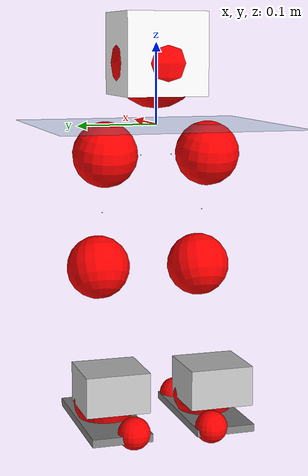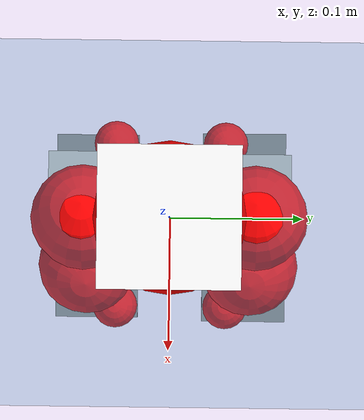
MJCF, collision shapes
<mujoco model="pi_12dof_release_v1">
  <compiler angle="radian" assetdir="assets" balanceinertia="true" inertiafromgeom="false"/>

  <option timestep="0.005" density="1.2" viscosity="2e-05"/>

  <size nkey="1"/>

  <visual>
    <quality shadowsize="8192"/>
    <map shadowclip="0.5"/>
  </visual>

  <default>
    <default class="/">
      <joint armature="0.01" damping="0.01" frictionloss="0.01"/>
      <geom contype="0" conaffinity="0" group="1" solref="-1000 -80"/>
      <site size="0.01 0.005 0.005" group="5"/>
      <general forcelimited="true" biastype="affine" gainprm="20" biasprm="0 -20 -0.5"/>
      <default class="foot">
        <geom size="0.0845 0.036 0.005" type="box" condim="6" group="4" priority="1" friction="0.9 0.2 0.2" solimp="0.015 1 0.005"/>
      </default>
      <default class="reward_collision_sphere">
        <geom group="5" rgba="1 0 0 1"/>
      </default>
    </default>
  </default>

  <asset>
    <texture type="skybox" colorspace="auto" name="//unnamed_texture_0" builtin="gradient" rgb1="0.95 0.95 0.95" rgb2="0.95 0.95 0.95" width="100" height="600"/>
    <texture type="2d" colorspace="auto" name="texplane" builtin="checker" rgb1="0.345 0.575 0.748" rgb2="0.345 0.575 0.748" markrgb="1 1 1" width="512" height="512"/>
    <material name="MatPlane" class="/" texture="texplane" texuniform="true" texrepeat="2 2" specular="0.9"/>
    <mesh name="baselink_1" class="/" file="baselink_1.STL"/>
    <mesh name="r_hip_pitch_link" class="/" file="r_hip_pitch_link.STL"/>
    <mesh name="r_hip_roll_link" class="/" file="r_hip_roll_link.STL"/>
    <mesh name="r_thigh_link" class="/" file="r_thigh_link.STL"/>
    <mesh name="r_calf_link" class="/" file="r_calf_link.STL"/>
    <mesh name="r_ankle_pitch_link" class="/" file="r_ankle_pitch_link.STL"/>
    <mesh name="r_ankle_roll_link" class="/" file="r_ankle_roll_link.STL"/>
    <mesh name="l_hip_pitch_link" class="/" file="l_hip_pitch_link.STL"/>
    <mesh name="l_hip_roll_link" class="/" file="l_hip_roll_link.STL"/>
    <mesh name="l_thigh_link" class="/" file="l_thigh_link.STL"/>
    <mesh name="l_calf_link" class="/" file="l_calf_link.STL"/>
    <mesh name="l_ankle_pitch_link" class="/" file="l_ankle_pitch_link.STL"/>
    <mesh name="l_ankle_roll_link" class="/" file="l_ankle_roll_link.STL"/>
  </asset>

  <worldbody>
    <geom name="floor" class="/" size="100 100 0.125" type="plane" group="0" material="MatPlane"/>
    <light name="toplight_shadow" class="/" pos="0 0 5" dir="0.0990148 0.0990148 -0.990148" type="directional" ambient="0.04 0.04 0.04" diffuse="0.55 0.55 0.55" specular="0.12 0.12 0.12"/>
    <light name="toplight_fill" class="/" pos="0 0 5" dir="0.0990148 0.0990148 -0.990148" type="directional" castshadow="false" ambient="0.04 0.04 0.04" diffuse="0.3 0.3 0.3" specular="0.08 0.08 0.08"/>
    <body name="trunk" pos="0.000533413 0.000200555 -0.00172945" quat="1 0.000435026 0.000280004 0.000454102">
      <inertial pos="0.00292758 -0.000400471 0.0441695" quat="0.697844 0.014552 0.00830069 0.716054" mass="2.29372" diaginertia="0.0156179 0.00382511 0.00696661"/>
      <joint name="//unnamed_joint_0" type="free"/>
      <geom name="//unnamed_geom_1" class="/" type="mesh" density="0" rgba="1 1 1 1" mesh="baselink_1"/>
      <geom name="//unnamed_geom_2" class="/" size="0.0506169 0.0506169 0.0506169" pos="0 0 0.0883061" type="box" rgba="1 1 1 1"/>
      <geom name="//unnamed_geom_3" class="reward_collision_sphere" size="0.0556785" pos="0 0 0.0772678"/>
      <site name="imu" class="/" pos="0.0011641 -0.00344856 -0.00169201" size="0.0101234"/>
      <camera name="track" class="/" pos="0 -1.67768 0" quat="0.707107 0.707107 0 0" mode="trackcom"/>
      <camera name="ego_camera" class="/" pos="0.082076 0 0.198689" quat="-0.5 -0.5 0.5 0.5"/>
      <body name="r_hip_pitch_link" pos="0.000380922 -0.019791 -0.0358501" quat="0.992197 -3.19534e-06 -0.12468 -1.0004e-06">
        <inertial pos="0.000275526 -0.0468395 -0.00120951" quat="-0.0197517 0.700922 -0.0244134 0.712546" mass="0.387713" diaginertia="0.000172079 4.13618e-05 0.000137542"/>
        <joint name="r_hip_pitch_joint" class="/" pos="0 0 0" axis="-0.00280082 -0.999996 -0.000147161" stiffness="0.00141098" range="-1.75024 1.2577" armature="0.0102044" damping="0.0158658" frictionloss="0.0103374"/>
        <geom name="//unnamed_geom_4" class="/" type="mesh" density="0" rgba="0.75294 0.75294 0.75294 1" mesh="r_hip_pitch_link"/>
        <geom name="//unnamed_geom_5" class="/" size="0.000506169 0.000506169 0.000506169" type="box" rgba="0.75294 0.75294 0.75294 1"/>
        <body name="r_hip_roll_link" pos="-0.000825656 -0.0472789 0.000783961" quat="1 -0.000196509 -0.00010184 -0.000176908">
          <inertial pos="-0.000471462 -0.000225217 -0.0672256" quat="0.707229 -0.0799843 -0.085038 0.697279" mass="0.397981" diaginertia="0.000519316 0.000114105 0.000206717"/>
          <joint name="r_hip_roll_joint" class="/" pos="0 0 0" axis="-1 -6.24186e-05 0.000401961" range="-0.123441 0.494228" armature="0.00913879" damping="0.00838426" frictionloss="0.00982152"/>
          <geom name="//unnamed_geom_6" class="/" type="mesh" density="0" rgba="0.75294 0.75294 0.75294 1" mesh="r_hip_roll_link"/>
          <geom name="//unnamed_geom_7" class="/" size="0.000506169 0.000506169 0.000506169" type="box" rgba="0.75294 0.75294 0.75294 1"/>
          <geom name="//unnamed_geom_8" class="reward_collision_sphere" size="0.0404935"/>
          <body name="r_thigh_link" pos="0.00089964 3.50308e-05 -0.0762482" quat="1 -0.00029272 0.000137763 0.000116582">
            <inertial pos="-0.0015659 -0.000697202 -0.0519025" quat="0.737419 0.675435 0.000194408 0.000527119" mass="0.117379" diaginertia="0.000193636 3.96672e-05 9.50214e-05"/>
            <joint name="r_thigh_joint" class="/" pos="0 0 0" axis="-5.4485e-06 -1.70776e-05 -1" range="-0.283245 0.60643" armature="0.00925059" damping="0.00387965" frictionloss="0.00992836"/>
            <geom name="//unnamed_geom_9" class="/" type="mesh" density="0" rgba="0.75294 0.75294 0.75294 1" mesh="r_thigh_link"/>
            <geom name="//unnamed_geom_10" class="/" size="0.000506169 0.000506169 0.000506169" type="box" rgba="0.75294 0.75294 0.75294 1"/>
            <body name="r_calf_link" pos="-0.000588968 -0.00201958 -0.0782624" quat="0.947478 -0.000728501 0.319819 -0.000319778">
              <inertial pos="0.000706952 -0.00083213 -0.0766844" quat="0.9999 -0.00913708 -0.00378947 0.0101238" mass="0.87008" diaginertia="0.00559427 0.00147085 0.000290179"/>
              <joint name="r_calf_joint" class="/" pos="0 0 0" axis="0.00338251 -0.999994 0.00107357" stiffness="0.000636996" range="-1.65337 0.631097" armature="0.0101183" damping="0.00666868" frictionloss="0.0103171"/>
              <geom name="//unnamed_geom_11" class="/" type="mesh" density="0" rgba="0.75294 0.75294 0.75294 1" mesh="r_calf_link"/>
              <geom name="//unnamed_geom_12" class="/" size="0.000506169 0.000506169 0.000506169" type="box" rgba="0.75294 0.75294 0.75294 1"/>
              <geom name="//unnamed_geom_13" class="reward_collision_sphere" size="0.0404935"/>
              <body name="r_ankle_pitch_link" pos="0.000376524 0.00089369 -0.153056" quat="0.980135 0.000132651 -0.19833 4.30892e-05">
                <inertial pos="0.00622686 0.00319578 0.000582884" quat="0.00395361 0.708182 -0.00245123 0.706014" mass="0.183389" diaginertia="0.0004822 9.16542e-05 0.000194198"/>
                <joint name="r_ankle_pitch_joint" class="/" pos="0 0 0" axis="-0.00224109 -0.999991 0.0035792" stiffness="0.00111376" range="-1.28163 0.503412" armature="0.0105952" damping="0.0195329" frictionloss="0.0103489"/>
                <geom name="//unnamed_geom_14" class="/" type="mesh" density="0" rgba="0.75294 0.75294 0.75294 1" mesh="r_ankle_pitch_link"/>
                <geom name="//unnamed_geom_15" class="/" size="0.0394812 0.0404935 0.0253084" type="box" rgba="0.75294 0.75294 0.75294 1"/>
                <body name="r_ankle_roll_link" pos="0.0820523 0.00132338 7.64932e-07" quat="1 5.50205e-06 -5.13915e-06 -8.78146e-06">
                  <inertial pos="-0.0252755 -0.00108196 -0.0157958" quat="0.566232 0.433211 0.42867 0.554934" mass="0.526515" diaginertia="0.00174565 0.000426583 0.000459434"/>
                  <joint name="r_ankle_roll_joint" class="/" pos="0 0 0" axis="-0.999999 -0.000638648 -0.000904788" range="-0.190142 0.138471" armature="0.00964759" damping="0.0124477" frictionloss="0.00940255"/>
                  <geom name="//unnamed_geom_16" class="/" type="mesh" density="0" rgba="0.75294 0.75294 0.75294 1" mesh="r_ankle_roll_link"/>
                  <geom name="//unnamed_geom_17" class="/" type="mesh" rgba="0.75294 0.75294 0.75294 1" mesh="r_ankle_roll_link"/>
                  <geom name="right_foot" class="foot" size="0.0831703 0.0373404 0.00463307" pos="-0.0558117 0 -0.0485684"/>
                  <geom name="//unnamed_geom_19" class="reward_collision_sphere" size="0.0404935" pos="-0.0547173 0 -0.0220765"/>
                  <geom name="//unnamed_geom_20" class="reward_collision_sphere" size="0.0202467" pos="0.0164152 0.0167768 -0.0441531"/>
                  <geom name="//unnamed_geom_21" class="reward_collision_sphere" size="0.0202467" pos="-0.131322 0.0167768 -0.0441531"/>
                  <site name="right_foot" class="foot" pos="-0.0558117 0 -0.0485684" size="0.0101234"/>
                </body>
              </body>
            </body>
          </body>
        </body>
      </body>
      <body name="l_hip_pitch_link" pos="0.000200241 0.0196706 -0.035555" quat="0.992225 -0.000100875 -0.124458 -8.25488e-05">
        <inertial pos="0.00199279 0.0437468 -0.00210658" quat="-0.0397131 0.708815 0.0289467 0.70368" mass="0.405289" diaginertia="0.000205653 4.35106e-05 0.00016594"/>
        <joint name="l_hip_pitch_joint" class="/" pos="0 0 0" axis="0.00317496 0.999984 -0.00457516" range="-1.28006 1.77051" armature="0.0101278" damping="0.000877321" frictionloss="0.00968518"/>
        <geom name="//unnamed_geom_22" class="/" type="mesh" density="0" rgba="0.75294 0.75294 0.75294 1" mesh="l_hip_pitch_link"/>
        <geom name="//unnamed_geom_23" class="/" size="0.000506169 0.000506169 0.000506169" type="box" rgba="0.75294 0.75294 0.75294 1"/>
        <body name="l_hip_roll_link" pos="-0.000806825 0.0458929 0.00183657" quat="1 -6.77789e-06 -2.75491e-05 1.98308e-05">
          <inertial pos="0.000571275 -0.000222284 -0.0695165" quat="0.699293 -0.0753062 -0.0780541 0.706559" mass="0.413964" diaginertia="0.000545787 0.000119006 0.000215463"/>
          <joint name="l_hip_roll_joint" class="/" pos="0 0 0" axis="-1 0.00026459 -0.000400088" range="-0.500557 0.130454" armature="0.0100939" damping="0.00315802" frictionloss="0.0101264"/>
          <geom name="//unnamed_geom_24" class="/" type="mesh" density="0" rgba="0.75294 0.75294 0.75294 1" mesh="l_hip_roll_link"/>
          <geom name="//unnamed_geom_25" class="/" size="0.000506169 0.000506169 0.000506169" type="box" rgba="0.75294 0.75294 0.75294 1"/>
          <geom name="//unnamed_geom_26" class="reward_collision_sphere" size="0.0404935"/>
          <body name="l_thigh_link" pos="0.000134651 -0.000765014 -0.0766859" quat="1 0.000123567 4.19827e-05 -3.99919e-05">
            <inertial pos="-0.00114597 -0.00201431 -0.0545617" quat="0.676779 0.736164 0.00515613 -0.00238741" mass="0.116923" diaginertia="0.000195986 3.97938e-05 9.38211e-05"/>
            <joint name="l_thigh_joint" class="/" pos="0 0 0" axis="-0.00061371 0.000204033 -1" range="-0.596182 0.28678" armature="0.0101162" damping="0.0119745" frictionloss="0.0110587"/>
            <geom name="//unnamed_geom_27" class="/" type="mesh" density="0" rgba="0.75294 0.75294 0.75294 1" mesh="l_thigh_link"/>
            <geom name="//unnamed_geom_28" class="/" size="0.000506169 0.000506169 0.000506169" type="box" rgba="0.75294 0.75294 0.75294 1"/>
            <body name="l_calf_link" pos="0.00165299 0.00053493 -0.0762449" quat="0.94769 -0.000110935 0.319192 4.21993e-05">
              <inertial pos="0.000204637 0.00320399 -0.0772123" quat="0.999942 0.00163073 -0.00298592 0.0102219" mass="0.84024" diaginertia="0.00575119 0.00147895 0.000289087"/>
              <joint name="l_calf_joint" class="/" pos="0 0 0" axis="-0.00130501 0.999994 -0.00310477" range="-0.668538 1.67917" armature="0.010015" damping="0.0091707" frictionloss="0.00991175"/>
              <geom name="//unnamed_geom_29" class="/" type="mesh" density="0" rgba="0.75294 0.75294 0.75294 1" mesh="l_calf_link"/>
              <geom name="//unnamed_geom_30" class="/" size="0.000506169 0.000506169 0.000506169" type="box" rgba="0.75294 0.75294 0.75294 1"/>
              <geom name="//unnamed_geom_31" class="reward_collision_sphere" size="0.0404935"/>
              <body name="l_ankle_pitch_link" pos="0.00145909 -1.52214e-05 -0.153477" quat="0.9801 0.000237873 -0.198504 -4.74181e-05">
                <inertial pos="0.00437437 -8.79786e-05 -0.0015272" quat="-0.00323235 0.707502 0.00347866 0.706696" mass="0.179615" diaginertia="0.000492035 9.29066e-05 0.000197642"/>
                <joint name="l_ankle_pitch_joint" class="/" pos="0 0 0" axis="5.00553e-06 1 0.000160083" range="-0.499856 1.30901" armature="0.0106505" damping="0" frictionloss="0.00992068"/>
                <geom name="//unnamed_geom_32" class="/" type="mesh" density="0" rgba="0.75294 0.75294 0.75294 1" mesh="l_ankle_pitch_link"/>
                <geom name="//unnamed_geom_33" class="/" size="0.0394812 0.0404935 0.0253084" type="box" rgba="0.75294 0.75294 0.75294 1"/>
                <body name="l_ankle_roll_link" pos="0.0809281 0.000806331 -0.00108222" quat="1 -8.14385e-07 0.000347488 0.000924506">
                  <inertial pos="-0.0269609 -0.000350009 -0.0155539" quat="0.556916 0.429119 0.439516 0.559041" mass="0.532712" diaginertia="0.00175364 0.000420524 0.000452666"/>
                  <joint name="l_ankle_roll_joint" class="/" pos="0 0 0" axis="-1 6.05097e-05 9.16001e-05" range="-0.144933 0.112473" armature="0.00999781" damping="0.00674193" frictionloss="0.0106019"/>
                  <geom name="//unnamed_geom_34" class="/" type="mesh" density="0" rgba="0.75294 0.75294 0.75294 1" mesh="l_ankle_roll_link"/>
                  <geom name="//unnamed_geom_35" class="/" type="mesh" rgba="0.75294 0.75294 0.75294 1" mesh="l_ankle_roll_link"/>
                  <geom name="left_foot" class="foot" size="0.085629 0.0378151 0.00495622" pos="-0.0558117 0 -0.0485684"/>
                  <geom name="//unnamed_geom_37" class="reward_collision_sphere" size="0.0404935" pos="-0.0547173 0 -0.0220765"/>
                  <geom name="//unnamed_geom_38" class="reward_collision_sphere" size="0.0202467" pos="0.0164152 -0.0167768 -0.0441531"/>
                  <geom name="//unnamed_geom_39" class="reward_collision_sphere" size="0.0202467" pos="-0.131322 -0.0167768 -0.0441531"/>
                  <site name="left_foot" class="foot" pos="-0.0558117 0 -0.0485684" size="0.0101234"/>
                </body>
              </body>
            </body>
          </body>
        </body>
      </body>
    </body>
  </worldbody>

  <contact>
    <pair class="/" geom1="floor" geom2="right_foot" name="//unnamed_contact_1"/>
    <pair class="/" geom1="floor" geom2="left_foot" name="//unnamed_contact_0"/>
  </contact>

  <actuator>
    <general name="r_hip_pitch_joint" class="/" joint="r_hip_pitch_joint" forcerange="-22.0199 22.0199" gainprm="19.2993" biasprm="0 -19.2993 -0.495866"/>
    <general name="r_hip_roll_joint" class="/" joint="r_hip_roll_joint" forcerange="-19.755 19.755" gainprm="19.2993" biasprm="0 -19.2993 -0.495866"/>
    <general name="r_thigh_joint" class="/" joint="r_thigh_joint" forcerange="-21.1548 21.1548" gainprm="19.2993" biasprm="0 -19.2993 -0.495866"/>
    <general name="r_calf_joint" class="/" joint="r_calf_joint" forcerange="-22.8434 22.8434" gainprm="19.2993" biasprm="0 -19.2993 -0.495866"/>
    <general name="r_ankle_pitch_joint" class="/" joint="r_ankle_pitch_joint" forcerange="-22.0309 22.0309" gainprm="19.2993" biasprm="0 -19.2993 -0.495866"/>
    <general name="r_ankle_roll_joint" class="/" joint="r_ankle_roll_joint" forcerange="-19.7363 19.7363" gainprm="19.2993" biasprm="0 -19.2993 -0.495866"/>
    <general name="l_hip_pitch_joint" class="/" joint="l_hip_pitch_joint" forcerange="-21.3022 21.3022" gainprm="19.2993" biasprm="0 -19.2993 -0.495866"/>
    <general name="l_hip_roll_joint" class="/" joint="l_hip_roll_joint" forcerange="-21.5131 21.5131" gainprm="19.2993" biasprm="0 -19.2993 -0.495866"/>
    <general name="l_thigh_joint" class="/" joint="l_thigh_joint" forcerange="-20.6569 20.6569" gainprm="19.2993" biasprm="0 -19.2993 -0.495866"/>
    <general name="l_calf_joint" class="/" joint="l_calf_joint" forcerange="-20.9079 20.9079" gainprm="19.2993" biasprm="0 -19.2993 -0.495866"/>
    <general name="l_ankle_pitch_joint" class="/" joint="l_ankle_pitch_joint" forcerange="-20.5787 20.5787" gainprm="19.2993" biasprm="0 -19.2993 -0.495866"/>
    <general name="l_ankle_roll_joint" class="/" joint="l_ankle_roll_joint" forcerange="-21.2859 21.2859" gainprm="19.2993" biasprm="0 -19.2993 -0.495866"/>
  </actuator>

  <sensor>
    <gyro site="imu" name="imu_angular_velocity"/>
    <velocimeter site="imu" name="imu_linear_velocity"/>
    <framelinvel objtype="site" objname="left_foot" name="left_foot_global_linear_velocity"/>
    <framelinvel objtype="site" objname="right_foot" name="right_foot_global_linear_velocity"/>
  </sensor>

  <keyframe>
    <key name="home" qpos="0 0 0.291 1 0 0 0 0.4 0 0 -0.8 0.4 0 -0.4 0 0 0.8 -0.4 0"/>
  </keyframe>
</mujoco>
